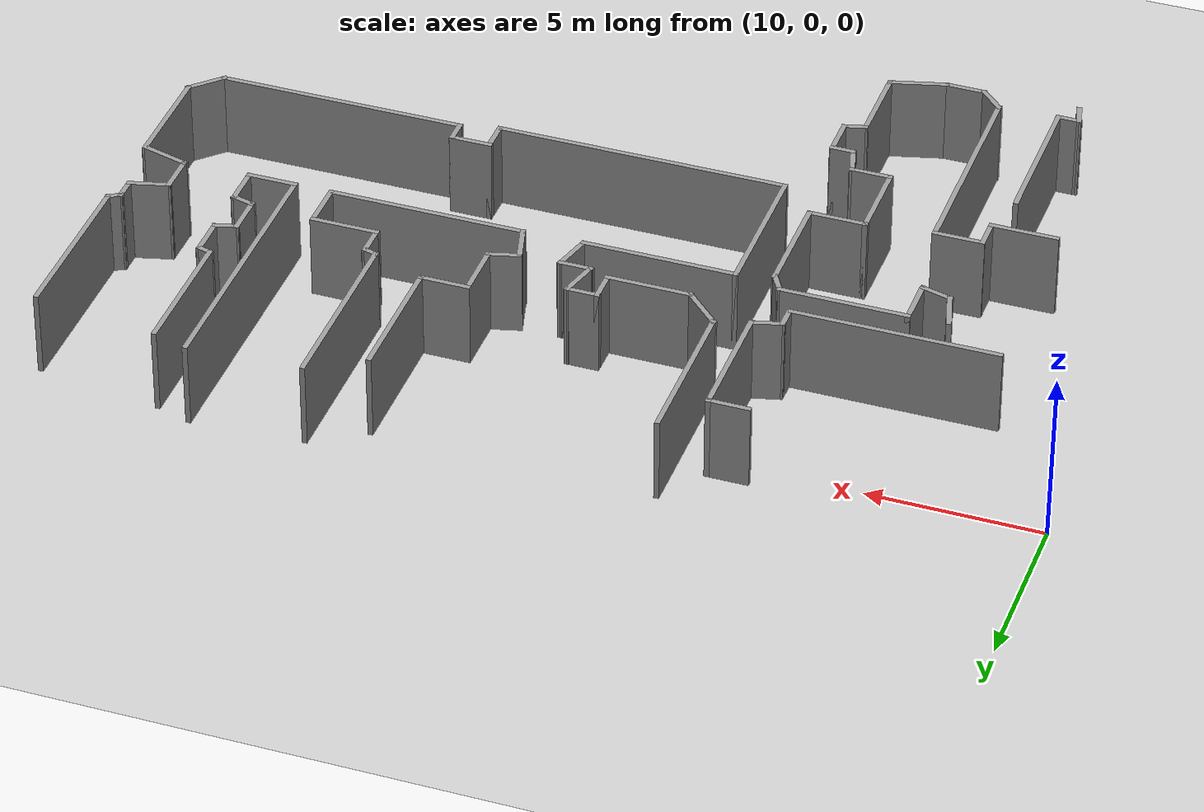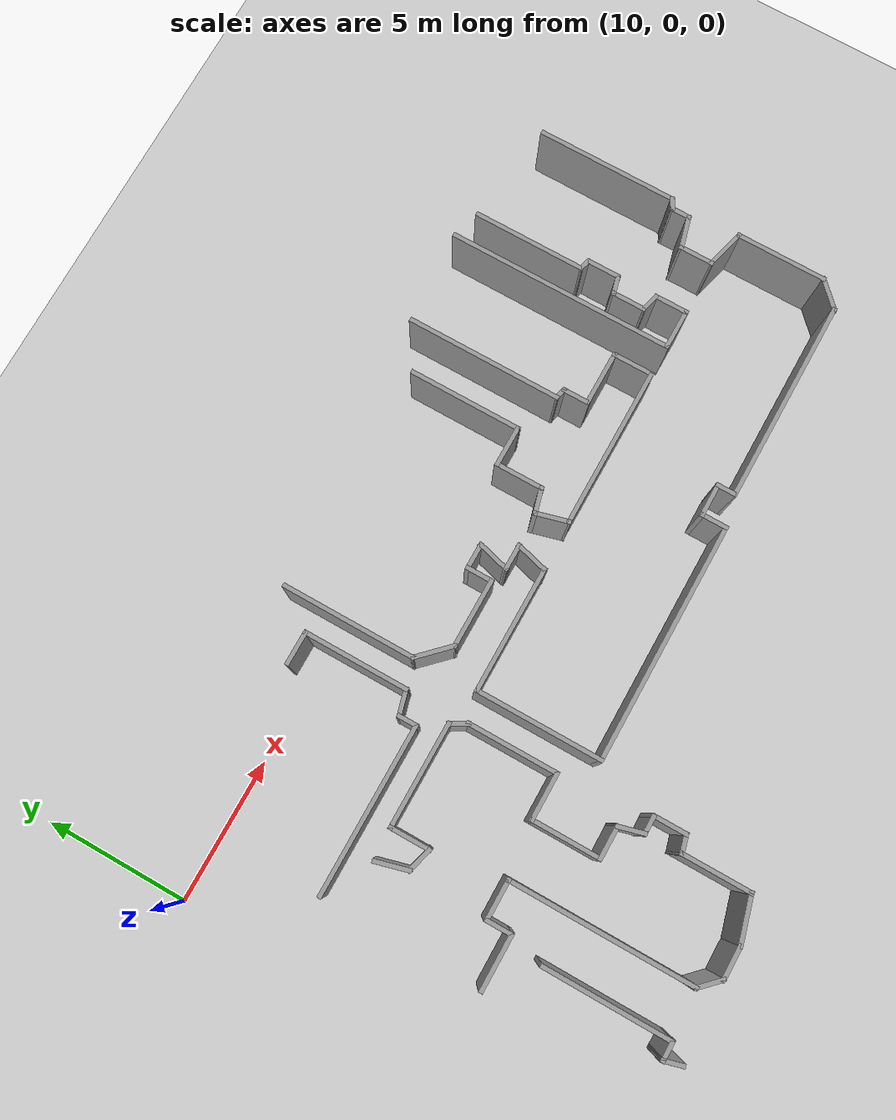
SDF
<sdf version="1.7">
 <world name="default">
  <model name="ground_plane">
   <static>1</static>
   <link name="link">
    <collision name="collision">
     <geometry><plane><normal>0 0 1</normal><size>100 100</size></plane></geometry>
     <surface>
      <contact><collide_bitmask>65535</collide_bitmask></contact>
      <friction><ode><mu>100</mu><mu2>50</mu2></ode></friction>
     </surface>
    </collision>
    <visual name="visual">
     <cast_shadows>0</cast_shadows>
     <geometry><plane><normal>0 0 1</normal><size>100 100</size></plane></geometry>
     <material>
      <script><uri>file://media/materials/scripts/gazebo.material</uri><name>Gazebo/Grey</name></script>
     </material>
    </visual>
   </link>
  </model>
  <model name="Hospital">
   <pose>0.328682 -0.388502 0 0 -0 0</pose>
   <link name="Wall_108">
    <collision name="Wall_108_Collision">
     <geometry><box><size>5 0.15 2.5</size></box></geometry>
     <pose>0 0 1.25 0 -0 0</pose>
    </collision>
    <visual name="Wall_108_Visual">
     <pose>0 0 1.25 0 -0 0</pose>
     <geometry><box><size>5 0.15 2.5</size></box></geometry>
     <material>
      <script><uri>file://media/materials/scripts/gazebo.material</uri><name>Gazebo/Grey</name></script>
      <ambient>1 1 1 1</ambient>
     </material>
     <meta><layer>0</layer></meta>
    </visual>
    <pose>37.24 0.177411 0 0 -0 -1.5708</pose>
   </link>
   <link name="Wall_109">
    <collision name="Wall_109_Collision">
     <geometry><box><size>0.5 0.15 2.5</size></box></geometry>
     <pose>0 0 1.25 0 -0 0</pose>
    </collision>
    <visual name="Wall_109_Visual">
     <pose>0 0 1.25 0 -0 0</pose>
     <geometry><box><size>0.5 0.15 2.5</size></box></geometry>
     <material>
      <script><uri>file://media/materials/scripts/gazebo.material</uri><name>Gazebo/Grey</name></script>
      <ambient>1 1 1 1</ambient>
     </material>
     <meta><layer>0</layer></meta>
    </visual>
    <pose>37.0885 -2.33509 0 0 -0 -2.61799</pose>
   </link>
   <link name="Wall_110">
    <collision name="Wall_110_Collision">
     <geometry><box><size>0.75 0.15 2.5</size></box></geometry>
     <pose>0 0 1.25 0 -0 0</pose>
    </collision>
    <visual name="Wall_110_Visual">
     <pose>0 0 1.25 0 -0 0</pose>
     <geometry><box><size>0.75 0.15 2.5</size></box></geometry>
     <material>
      <script><uri>file://media/materials/scripts/gazebo.material</uri><name>Gazebo/Grey</name></script>
      <ambient>1 1 1 1</ambient>
     </material>
     <meta><layer>0</layer></meta>
    </visual>
    <pose>36.9369 -2.72259 0 0 -0 -1.5708</pose>
   </link>
   <link name="Wall_111">
    <collision name="Wall_111_Collision">
     <geometry><box><size>1.25 0.15 2.5</size></box></geometry>
     <pose>0 0 1.25 0 -0 0</pose>
    </collision>
    <visual name="Wall_111_Visual">
     <pose>0 0 1.25 0 -0 0</pose>
     <geometry><box><size>1.25 0.15 2.5</size></box></geometry>
     <material>
      <script><uri>file://media/materials/scripts/gazebo.material</uri><name>Gazebo/Grey</name></script>
      <ambient>1 1 1 1</ambient>
     </material>
     <meta><layer>0</layer></meta>
    </visual>
    <pose>36.4056 -3.16494 0 0 -0 -2.87979</pose>
   </link>
   <link name="Wall_112">
    <collision name="Wall_112_Collision">
     <geometry><box><size>1.25 0.15 2.5</size></box></geometry>
     <pose>0 0 1.25 0 -0 0</pose>
    </collision>
    <visual name="Wall_112_Visual">
     <pose>0 0 1.25 0 -0 0</pose>
     <geometry><box><size>1.25 0.15 2.5</size></box></geometry>
     <material>
      <script><uri>file://media/materials/scripts/gazebo.material</uri><name>Gazebo/Grey</name></script>
      <ambient>1 1 1 1</ambient>
     </material>
     <meta><layer>0</layer></meta>
    </visual>
    <pose>35.8744 -3.85729 0 0 -0 -1.5708</pose>
   </link>
   <link name="Wall_113">
    <collision name="Wall_113_Collision">
     <geometry><box><size>1.5 0.15 2.5</size></box></geometry>
     <pose>0 0 1.25 0 -0 0</pose>
    </collision>
    <visual name="Wall_113_Visual">
     <pose>0 0 1.25 0 -0 0</pose>
     <geometry><box><size>1.5 0.15 2.5</size></box></geometry>
     <material>
      <script><uri>file://media/materials/scripts/gazebo.material</uri><name>Gazebo/Grey</name></script>
      <ambient>1 1 1 1</ambient>
     </material>
     <meta><layer>0</layer></meta>
    </visual>
    <pose>36.5264 -4.58199 0 0 -0 -0.261799</pose>
   </link>
   <link name="Wall_114">
    <collision name="Wall_114_Collision">
     <geometry><box><size>3.25 0.15 2.5</size></box></geometry>
     <pose>0 0 1.25 0 -0 0</pose>
    </collision>
    <visual name="Wall_114_Visual">
     <pose>0 0 1.25 0 -0 0</pose>
     <geometry><box><size>3.25 0.15 2.5</size></box></geometry>
     <material>
      <script><uri>file://media/materials/scripts/gazebo.material</uri><name>Gazebo/Grey</name></script>
      <ambient>1 1 1 1</ambient>
     </material>
     <meta><layer>0</layer></meta>
    </visual>
    <pose>37.1784 -6.3067 0 0 -0 -1.5708</pose>
   </link>
   <link name="Wall_115">
    <collision name="Wall_115_Collision">
     <geometry><box><size>1.25 0.15 2.5</size></box></geometry>
     <pose>0 0 1.25 0 -0 0</pose>
    </collision>
    <visual name="Wall_115_Visual">
     <pose>0 0 1.25 0 -0 0</pose>
     <geometry><box><size>1.25 0.15 2.5</size></box></geometry>
     <material>
      <script><uri>file://media/materials/scripts/gazebo.material</uri><name>Gazebo/Grey</name></script>
      <ambient>1 1 1 1</ambient>
     </material>
     <meta><layer>0</layer></meta>
    </visual>
    <pose>36.7895 -8.2456 0 0 -0 -2.35619</pose>
   </link>
   <link name="Wall_116">
    <collision name="Wall_116_Collision">
     <geometry><box><size>7.25 0.15 2.5</size></box></geometry>
     <pose>0 0 1.25 0 -0 0</pose>
    </collision>
    <visual name="Wall_116_Visual">
     <pose>0 0 1.25 0 -0 0</pose>
     <geometry><box><size>7.25 0.15 2.5</size></box></geometry>
     <material>
      <script><uri>file://media/materials/scripts/gazebo.material</uri><name>Gazebo/Grey</name></script>
      <ambient>1 1 1 1</ambient>
     </material>
     <meta><layer>0</layer></meta>
    </visual>
    <pose>32.8506 -8.63451 0 0 -0 3.14159</pose>
   </link>
   <link name="Wall_117">
    <collision name="Wall_117_Collision">
     <geometry><box><size>0.75 0.15 2.5</size></box></geometry>
     <pose>0 0 1.25 0 -0 0</pose>
    </collision>
    <visual name="Wall_117_Visual">
     <pose>0 0 1.25 0 -0 0</pose>
     <geometry><box><size>0.75 0.15 2.5</size></box></geometry>
     <material>
      <script><uri>file://media/materials/scripts/gazebo.material</uri><name>Gazebo/Grey</name></script>
      <ambient>1 1 1 1</ambient>
     </material>
     <meta><layer>0</layer></meta>
    </visual>
    <pose>29.3006 -8.33451 0 0 -0 1.5708</pose>
   </link>
   <link name="Wall_118">
    <collision name="Wall_118_Collision">
     <geometry><box><size>1.25 0.15 2.5</size></box></geometry>
     <pose>0 0 1.25 0 -0 0</pose>
    </collision>
    <visual name="Wall_118_Visual">
     <pose>0 0 1.25 0 -0 0</pose>
     <geometry><box><size>1.25 0.15 2.5</size></box></geometry>
     <material>
      <script><uri>file://media/materials/scripts/gazebo.material</uri><name>Gazebo/Grey</name></script>
      <ambient>1 1 1 1</ambient>
     </material>
     <meta><layer>0</layer></meta>
    </visual>
    <pose>28.7506 -8.03451 0 0 -0 3.14159</pose>
   </link>
   <link name="Wall_119">
    <collision name="Wall_119_Collision">
     <geometry><box><size>1 0.15 2.5</size></box></geometry>
     <pose>0 0 1.25 0 -0 0</pose>
    </collision>
    <visual name="Wall_119_Visual">
     <pose>0 0 1.25 0 -0 0</pose>
     <geometry><box><size>1 0.15 2.5</size></box></geometry>
     <material>
      <script><uri>file://media/materials/scripts/gazebo.material</uri><name>Gazebo/Grey</name></script>
      <ambient>1 1 1 1</ambient>
     </material>
     <meta><layer>0</layer></meta>
    </visual>
    <pose>28.2006 -8.45951 0 0 -0 -1.5708</pose>
   </link>
   <link name="Wall_120">
    <collision name="Wall_120_Collision">
     <geometry><box><size>8.5 0.15 2.5</size></box></geometry>
     <pose>0 0 1.25 0 -0 0</pose>
    </collision>
    <visual name="Wall_120_Visual">
     <pose>0 0 1.25 0 -0 0</pose>
     <geometry><box><size>8.5 0.15 2.5</size></box></geometry>
     <material>
      <script><uri>file://media/materials/scripts/gazebo.material</uri><name>Gazebo/Grey</name></script>
      <ambient>1 1 1 1</ambient>
     </material>
     <meta><layer>0</layer></meta>
    </visual>
    <pose>24.0256 -8.88451 0 0 -0 3.14159</pose>
   </link>
   <link name="Wall_121">
    <collision name="Wall_121_Collision">
     <geometry><box><size>4.5 0.15 2.5</size></box></geometry>
     <pose>0 0 1.25 0 -0 0</pose>
    </collision>
    <visual name="Wall_121_Visual">
     <pose>0 0 1.25 0 -0 0</pose>
     <geometry><box><size>4.5 0.15 2.5</size></box></geometry>
     <material>
      <script><uri>file://media/materials/scripts/gazebo.material</uri><name>Gazebo/Grey</name></script>
      <ambient>1 1 1 1</ambient>
     </material>
     <meta><layer>0</layer></meta>
    </visual>
    <pose>19.8506 -6.70951 0 0 -0 1.5708</pose>
   </link>
   <link name="Wall_122">
    <collision name="Wall_122_Collision">
     <geometry><box><size>4.5 0.15 2.5</size></box></geometry>
     <pose>0 0 1.25 0 -0 0</pose>
    </collision>
    <visual name="Wall_122_Visual">
     <pose>0 0 1.25 0 -0 0</pose>
     <geometry><box><size>4.5 0.15 2.5</size></box></geometry>
     <material>
      <script><uri>file://media/materials/scripts/gazebo.material</uri><name>Gazebo/Grey</name></script>
      <ambient>1 1 1 1</ambient>
     </material>
     <meta><layer>0</layer></meta>
    </visual>
    <pose>22.0256 -4.53451 0 0 -0 0</pose>
   </link>
   <link name="Wall_123">
    <collision name="Wall_123_Collision">
     <geometry><box><size>1.25 0.15 2.5</size></box></geometry>
     <pose>0 0 1.25 0 -0 0</pose>
    </collision>
    <visual name="Wall_123_Visual">
     <pose>0 0 1.25 0 -0 0</pose>
     <geometry><box><size>1.25 0.15 2.5</size></box></geometry>
     <material>
      <script><uri>file://media/materials/scripts/gazebo.material</uri><name>Gazebo/Grey</name></script>
      <ambient>1 1 1 1</ambient>
     </material>
     <meta><layer>0</layer></meta>
    </visual>
    <pose>24.3429 -4.00325 0 0 -0 1.309</pose>
   </link>
   <link name="Wall_124">
    <collision name="Wall_124_Collision">
     <geometry><box><size>1 0.15 2.5</size></box></geometry>
     <pose>0 0 1.25 0 -0 0</pose>
    </collision>
    <visual name="Wall_124_Visual">
     <pose>0 0 1.25 0 -0 0</pose>
     <geometry><box><size>1 0.15 2.5</size></box></geometry>
     <material>
      <script><uri>file://media/materials/scripts/gazebo.material</uri><name>Gazebo/Grey</name></script>
      <ambient>1 1 1 1</ambient>
     </material>
     <meta><layer>0</layer></meta>
    </visual>
    <pose>24.0603 -3.472 0 0 -0 3.14159</pose>
   </link>
   <link name="Wall_125">
    <collision name="Wall_125_Collision">
     <geometry><box><size>1.25 0.15 2.5</size></box></geometry>
     <pose>0 0 1.25 0 -0 0</pose>
    </collision>
    <visual name="Wall_125_Visual">
     <pose>0 0 1.25 0 -0 0</pose>
     <geometry><box><size>1.25 0.15 2.5</size></box></geometry>
     <material>
      <script><uri>file://media/materials/scripts/gazebo.material</uri><name>Gazebo/Grey</name></script>
      <ambient>1 1 1 1</ambient>
     </material>
     <meta><layer>0</layer></meta>
    </visual>
    <pose>23.7776 -2.94074 0 0 -0 1.309</pose>
   </link>
   <link name="Wall_126">
    <collision name="Wall_126_Collision">
     <geometry><box><size>1 0.15 2.5</size></box></geometry>
     <pose>0 0 1.25 0 -0 0</pose>
    </collision>
    <visual name="Wall_126_Visual">
     <pose>0 0 1.25 0 -0 0</pose>
     <geometry><box><size>1 0.15 2.5</size></box></geometry>
     <material>
      <script><uri>file://media/materials/scripts/gazebo.material</uri><name>Gazebo/Grey</name></script>
      <ambient>1 1 1 1</ambient>
     </material>
     <meta><layer>0</layer></meta>
    </visual>
    <pose>23.495 -2.40948 0 0 -0 3.14159</pose>
   </link>
   <link name="Wall_127">
    <collision name="Wall_127_Collision">
     <geometry><box><size>1 0.15 2.5</size></box></geometry>
     <pose>0 0 1.25 0 -0 0</pose>
    </collision>
    <visual name="Wall_127_Visual">
     <pose>0 0 1.25 0 -0 0</pose>
     <geometry><box><size>1 0.15 2.5</size></box></geometry>
     <material>
      <script><uri>file://media/materials/scripts/gazebo.material</uri><name>Gazebo/Grey</name></script>
      <ambient>1 1 1 1</ambient>
     </material>
     <meta><layer>0</layer></meta>
    </visual>
    <pose>23.07 -2.83448 0 0 -0 -1.5708</pose>
   </link>
   <link name="Wall_128">
    <collision name="Wall_128_Collision">
     <geometry><box><size>2.5 0.15 2.5</size></box></geometry>
     <pose>0 0 1.25 0 -0 0</pose>
    </collision>
    <visual name="Wall_128_Visual">
     <pose>0 0 1.25 0 -0 0</pose>
     <geometry><box><size>2.5 0.15 2.5</size></box></geometry>
     <material>
      <script><uri>file://media/materials/scripts/gazebo.material</uri><name>Gazebo/Grey</name></script>
      <ambient>1 1 1 1</ambient>
     </material>
     <meta><layer>0</layer></meta>
    </visual>
    <pose>21.895 -3.25948 0 0 -0 3.14159</pose>
   </link>
   <link name="Wall_129">
    <collision name="Wall_129_Collision">
     <geometry><box><size>1.5 0.15 2.5</size></box></geometry>
     <pose>0 0 1.25 0 -0 0</pose>
    </collision>
    <visual name="Wall_129_Visual">
     <pose>0 0 1.25 0 -0 0</pose>
     <geometry><box><size>1.5 0.15 2.5</size></box></geometry>
     <material>
      <script><uri>file://media/materials/scripts/gazebo.material</uri><name>Gazebo/Grey</name></script>
      <ambient>1 1 1 1</ambient>
     </material>
     <meta><layer>0</layer></meta>
    </visual>
    <pose>20.2427 -2.78218 0 0 -0 2.35619</pose>
   </link>
   <link name="Wall_130">
    <collision name="Wall_130_Collision">
     <geometry><box><size>4.75 0.15 2.5</size></box></geometry>
     <pose>0 0 1.25 0 -0 0</pose>
    </collision>
    <visual name="Wall_130_Visual">
     <pose>0 0 1.25 0 -0 0</pose>
     <geometry><box><size>4.75 0.15 2.5</size></box></geometry>
     <material>
      <script><uri>file://media/materials/scripts/gazebo.material</uri><name>Gazebo/Grey</name></script>
      <ambient>1 1 1 1</ambient>
     </material>
     <meta><layer>0</layer></meta>
    </visual>
    <pose>19.7654 -0.004882 0 0 -0 1.5708</pose>
   </link>
   <link name="Wall_142">
    <collision name="Wall_142_Collision">
     <geometry><box><size>1.25 0.15 2.5</size></box></geometry>
     <pose>0 0 1.25 0 -0 0</pose>
    </collision>
    <visual name="Wall_142_Visual">
     <pose>0 0 1.25 0 -0 0</pose>
     <geometry><box><size>1.25 0.15 2.5</size></box></geometry>
     <material>
      <script><uri>file://media/materials/scripts/gazebo.material</uri><name>Gazebo/Grey</name></script>
      <ambient>1 1 1 1</ambient>
     </material>
     <meta><layer>0</layer></meta>
    </visual>
    <pose>18.259 0.987891 0 0 -0 0</pose>
   </link>
   <link name="Wall_143">
    <collision name="Wall_143_Collision">
     <geometry><box><size>3.75 0.15 2.5</size></box></geometry>
     <pose>0 0 1.25 0 -0 0</pose>
    </collision>
    <visual name="Wall_143_Visual">
     <pose>0 0 1.25 0 -0 0</pose>
     <geometry><box><size>3.75 0.15 2.5</size></box></geometry>
     <material>
      <script><uri>file://media/materials/scripts/gazebo.material</uri><name>Gazebo/Grey</name></script>
      <ambient>1 1 1 1</ambient>
     </material>
     <meta><layer>0</layer></meta>
    </visual>
    <pose>18.809 -0.812109 0 0 -0 -1.5708</pose>
   </link>
   <link name="Wall_144">
    <collision name="Wall_144_Collision">
     <geometry><box><size>1 0.15 2.5</size></box></geometry>
     <pose>0 0 1.25 0 -0 0</pose>
    </collision>
    <visual name="Wall_144_Visual">
     <pose>0 0 1.25 0 -0 0</pose>
     <geometry><box><size>1 0.15 2.5</size></box></geometry>
     <material>
      <script><uri>file://media/materials/scripts/gazebo.material</uri><name>Gazebo/Grey</name></script>
      <ambient>1 1 1 1</ambient>
     </material>
     <meta><layer>0</layer></meta>
    </visual>
    <pose>18.3985 -2.72211 0 0 -0 -2.87979</pose>
   </link>
   <link name="Wall_145">
    <collision name="Wall_145_Collision">
     <geometry><box><size>0.75 0.15 2.5</size></box></geometry>
     <pose>0 0 1.25 0 -0 0</pose>
    </collision>
    <visual name="Wall_145_Visual">
     <pose>0 0 1.25 0 -0 0</pose>
     <geometry><box><size>0.75 0.15 2.5</size></box></geometry>
     <material>
      <script><uri>file://media/materials/scripts/gazebo.material</uri><name>Gazebo/Grey</name></script>
      <ambient>1 1 1 1</ambient>
     </material>
     <meta><layer>0</layer></meta>
    </visual>
    <pose>17.988 -3.13211 0 0 -0 -1.5708</pose>
   </link>
   <link name="Wall_146">
    <collision name="Wall_146_Collision">
     <geometry><box><size>6 0.15 2.5</size></box></geometry>
     <pose>0 0 1.25 0 -0 0</pose>
    </collision>
    <visual name="Wall_146_Visual">
     <pose>0 0 1.25 0 -0 0</pose>
     <geometry><box><size>6 0.15 2.5</size></box></geometry>
     <material>
      <script><uri>file://media/materials/scripts/gazebo.material</uri><name>Gazebo/Grey</name></script>
      <ambient>1 1 1 1</ambient>
     </material>
     <meta><layer>0</layer></meta>
    </visual>
    <pose>15.063 -3.4321 0 0 -0 3.14159</pose>
   </link>
   <link name="Wall_153">
    <collision name="Wall_153_Collision">
     <geometry><box><size>1.25 0.15 2.5</size></box></geometry>
     <pose>0 0 1.25 0 -0 0</pose>
    </collision>
    <visual name="Wall_153_Visual">
     <pose>0 0 1.25 0 -0 0</pose>
     <geometry><box><size>1.25 0.15 2.5</size></box></geometry>
     <material>
      <script><uri>file://media/materials/scripts/gazebo.material</uri><name>Gazebo/Grey</name></script>
      <ambient>1 1 1 1</ambient>
     </material>
     <meta><layer>0</layer></meta>
    </visual>
    <pose>13.9709 -4.87529 0 0 -0 -1.309</pose>
   </link>
   <link name="Wall_154">
    <collision name="Wall_154_Collision">
     <geometry><box><size>1 0.15 2.5</size></box></geometry>
     <pose>0 0 1.25 0 -0 0</pose>
    </collision>
    <visual name="Wall_154_Visual">
     <pose>0 0 1.25 0 -0 0</pose>
     <geometry><box><size>1 0.15 2.5</size></box></geometry>
     <material>
      <script><uri>file://media/materials/scripts/gazebo.material</uri><name>Gazebo/Grey</name></script>
      <ambient>1 1 1 1</ambient>
     </material>
     <meta><layer>0</layer></meta>
    </visual>
    <pose>14.5238 -5.51655 0 0 -0 -0.261799</pose>
   </link>
   <link name="Wall_155">
    <collision name="Wall_155_Collision">
     <geometry><box><size>1.5 0.15 2.5</size></box></geometry>
     <pose>0 0 1.25 0 -0 0</pose>
    </collision>
    <visual name="Wall_155_Visual">
     <pose>0 0 1.25 0 -0 0</pose>
     <geometry><box><size>1.5 0.15 2.5</size></box></geometry>
     <material>
      <script><uri>file://media/materials/scripts/gazebo.material</uri><name>Gazebo/Grey</name></script>
      <ambient>1 1 1 1</ambient>
     </material>
     <meta><layer>0</layer></meta>
    </visual>
    <pose>14.9343 -4.95155 0 0 -0 1.5708</pose>
   </link>
   <link name="Wall_156">
    <collision name="Wall_156_Collision">
     <geometry><box><size>3.75 0.15 2.5</size></box></geometry>
     <pose>0 0 1.25 0 -0 0</pose>
    </collision>
    <visual name="Wall_156_Visual">
     <pose>0 0 1.25 0 -0 0</pose>
     <geometry><box><size>3.75 0.15 2.5</size></box></geometry>
     <material>
      <script><uri>file://media/materials/scripts/gazebo.material</uri><name>Gazebo/Grey</name></script>
      <ambient>1 1 1 1</ambient>
     </material>
     <meta><layer>0</layer></meta>
    </visual>
    <pose>16.7343 -4.27655 0 0 -0 0</pose>
   </link>
   <link name="Wall_157">
    <collision name="Wall_157_Collision">
     <geometry><box><size>0.75 0.15 2.5</size></box></geometry>
     <pose>0 0 1.25 0 -0 0</pose>
    </collision>
    <visual name="Wall_157_Visual">
     <pose>0 0 1.25 0 -0 0</pose>
     <geometry><box><size>0.75 0.15 2.5</size></box></geometry>
     <material>
      <script><uri>file://media/materials/scripts/gazebo.material</uri><name>Gazebo/Grey</name></script>
      <ambient>1 1 1 1</ambient>
     </material>
     <meta><layer>0</layer></meta>
    </visual>
    <pose>18.6843 -4.53635 0 0 -0 -1.0472</pose>
   </link>
   <link name="Wall_158">
    <collision name="Wall_158_Collision">
     <geometry><box><size>3.25 0.15 2.5</size></box></geometry>
     <pose>0 0 1.25 0 -0 0</pose>
    </collision>
    <visual name="Wall_158_Visual">
     <pose>0 0 1.25 0 -0 0</pose>
     <geometry><box><size>3.25 0.15 2.5</size></box></geometry>
     <material>
      <script><uri>file://media/materials/scripts/gazebo.material</uri><name>Gazebo/Grey</name></script>
      <ambient>1 1 1 1</ambient>
     </material>
     <meta><layer>0</layer></meta>
    </visual>
    <pose>18.8343 -6.34616 0 0 -0 -1.5708</pose>
   </link>
   <link name="Wall_159">
    <collision name="Wall_159_Collision">
     <geometry><box><size>1.75 0.15 2.5</size></box></geometry>
     <pose>0 0 1.25 0 -0 0</pose>
    </collision>
    <visual name="Wall_159_Visual">
     <pose>0 0 1.25 0 -0 0</pose>
     <geometry><box><size>1.75 0.15 2.5</size></box></geometry>
     <material>
      <script><uri>file://media/materials/scripts/gazebo.material</uri><name>Gazebo/Grey</name></script>
      <ambient>1 1 1 1</ambient>
     </material>
     <meta><layer>0</layer></meta>
    </visual>
    <pose>18.0343 -7.89616 0 0 -0 3.14159</pose>
   </link>
   <link name="Wall_160">
    <collision name="Wall_160_Collision">
     <geometry><box><size>2.5 0.15 2.5</size></box></geometry>
     <pose>0 0 1.25 0 -0 0</pose>
    </collision>
    <visual name="Wall_160_Visual">
     <pose>0 0 1.25 0 -0 0</pose>
     <geometry><box><size>2.5 0.15 2.5</size></box></geometry>
     <material>
      <script><uri>file://media/materials/scripts/gazebo.material</uri><name>Gazebo/Grey</name></script>
      <ambient>1 1 1 1</ambient>
     </material>
     <meta><layer>0</layer></meta>
    </visual>
    <pose>17.2343 -9.07116 0 0 -0 -1.5708</pose>
   </link>
   <link name="Wall_161">
    <collision name="Wall_161_Collision">
     <geometry><box><size>1.25 0.15 2.5</size></box></geometry>
     <pose>0 0 1.25 0 -0 0</pose>
    </collision>
    <visual name="Wall_161_Visual">
     <pose>0 0 1.25 0 -0 0</pose>
     <geometry><box><size>1.25 0.15 2.5</size></box></geometry>
     <material>
      <script><uri>file://media/materials/scripts/gazebo.material</uri><name>Gazebo/Grey</name></script>
      <ambient>1 1 1 1</ambient>
     </material>
     <meta><layer>0</layer></meta>
    </visual>
    <pose>17.7843 -10.2462 0 0 -0 0</pose>
   </link>
   <link name="Wall_162">
    <collision name="Wall_162_Collision">
     <geometry><box><size>1 0.15 2.5</size></box></geometry>
     <pose>0 0 1.25 0 -0 0</pose>
    </collision>
    <visual name="Wall_162_Visual">
     <pose>0 0 1.25 0 -0 0</pose>
     <geometry><box><size>1 0.15 2.5</size></box></geometry>
     <material>
      <script><uri>file://media/materials/scripts/gazebo.material</uri><name>Gazebo/Grey</name></script>
      <ambient>1 1 1 1</ambient>
     </material>
     <meta><layer>0</layer></meta>
    </visual>
    <pose>18.4443 -10.6567 0 0 -0 -1.309</pose>
   </link>
   <link name="Wall_163">
    <collision name="Wall_163_Collision">
     <geometry><box><size>0.75 0.15 2.5</size></box></geometry>
     <pose>0 0 1.25 0 -0 0</pose>
    </collision>
    <visual name="Wall_163_Visual">
     <pose>0 0 1.25 0 -0 0</pose>
     <geometry><box><size>0.75 0.15 2.5</size></box></geometry>
     <material>
      <script><uri>file://media/materials/scripts/gazebo.material</uri><name>Gazebo/Grey</name></script>
      <ambient>1 1 1 1</ambient>
     </material>
     <meta><layer>0</layer></meta>
    </visual>
    <pose>18.8543 -11.0672 0 0 -0 0</pose>
   </link>
   <link name="Wall_164">
    <collision name="Wall_164_Collision">
     <geometry><box><size>1.25 0.15 2.5</size></box></geometry>
     <pose>0 0 1.25 0 -0 0</pose>
    </collision>
    <visual name="Wall_164_Visual">
     <pose>0 0 1.25 0 -0 0</pose>
     <geometry><box><size>1.25 0.15 2.5</size></box></geometry>
     <material>
      <script><uri>file://media/materials/scripts/gazebo.material</uri><name>Gazebo/Grey</name></script>
      <ambient>1 1 1 1</ambient>
     </material>
     <meta><layer>0</layer></meta>
    </visual>
    <pose>19.1543 -11.6172 0 0 -0 -1.5708</pose>
   </link>
   <link name="Wall_165">
    <collision name="Wall_165_Collision">
     <geometry><box><size>0.75 0.15 2.5</size></box></geometry>
     <pose>0 0 1.25 0 -0 0</pose>
    </collision>
    <visual name="Wall_165_Visual">
     <pose>0 0 1.25 0 -0 0</pose>
     <geometry><box><size>0.75 0.15 2.5</size></box></geometry>
     <material>
      <script><uri>file://media/materials/scripts/gazebo.material</uri><name>Gazebo/Grey</name></script>
      <ambient>1 1 1 1</ambient>
     </material>
     <meta><layer>0</layer></meta>
    </visual>
    <pose>18.8646 -12.2448 0 0 -0 -2.87979</pose>
   </link>
   <link name="Wall_166">
    <collision name="Wall_166_Collision">
     <geometry><box><size>2.5 0.15 2.5</size></box></geometry>
     <pose>0 0 1.25 0 -0 0</pose>
    </collision>
    <visual name="Wall_166_Visual">
     <pose>0 0 1.25 0 -0 0</pose>
     <geometry><box><size>2.5 0.15 2.5</size></box></geometry>
     <material>
      <script><uri>file://media/materials/scripts/gazebo.material</uri><name>Gazebo/Grey</name></script>
      <ambient>1 1 1 1</ambient>
     </material>
     <meta><layer>0</layer></meta>
    </visual>
    <pose>18.5748 -13.4975 0 0 -0 -1.5708</pose>
   </link>
   <link name="Wall_167">
    <collision name="Wall_167_Collision">
     <geometry><box><size>1.75 0.15 2.5</size></box></geometry>
     <pose>0 0 1.25 0 -0 0</pose>
    </collision>
    <visual name="Wall_167_Visual">
     <pose>0 0 1.25 0 -0 0</pose>
     <geometry><box><size>1.75 0.15 2.5</size></box></geometry>
     <material>
      <script><uri>file://media/materials/scripts/gazebo.material</uri><name>Gazebo/Grey</name></script>
      <ambient>1 1 1 1</ambient>
     </material>
     <meta><layer>0</layer></meta>
    </visual>
    <pose>17.802 -14.8795 0 0 -0 -2.87979</pose>
   </link>
   <link name="Wall_168">
    <collision name="Wall_168_Collision">
     <geometry><box><size>1.25 0.15 2.5</size></box></geometry>
     <pose>0 0 1.25 0 -0 0</pose>
    </collision>
    <visual name="Wall_168_Visual">
     <pose>0 0 1.25 0 -0 0</pose>
     <geometry><box><size>1.25 0.15 2.5</size></box></geometry>
     <material>
      <script><uri>file://media/materials/scripts/gazebo.material</uri><name>Gazebo/Grey</name></script>
      <ambient>1 1 1 1</ambient>
     </material>
     <meta><layer>0</layer></meta>
    </visual>
    <pose>16.4793 -15.0866 0 0 -0 3.14159</pose>
   </link>
   <link name="Wall_169">
    <collision name="Wall_169_Collision">
     <geometry><box><size>1 0.15 2.5</size></box></geometry>
     <pose>0 0 1.25 0 -0 0</pose>
    </collision>
    <visual name="Wall_169_Visual">
     <pose>0 0 1.25 0 -0 0</pose>
     <geometry><box><size>1 0.15 2.5</size></box></geometry>
     <material>
      <script><uri>file://media/materials/scripts/gazebo.material</uri><name>Gazebo/Grey</name></script>
      <ambient>1 1 1 1</ambient>
     </material>
     <meta><layer>0</layer></meta>
    </visual>
    <pose>15.6288 -14.7861 0 0 -0 2.35619</pose>
   </link>
   <link name="Wall_170">
    <collision name="Wall_170_Collision">
     <geometry><box><size>6.5 0.15 2.5</size></box></geometry>
     <pose>0 0 1.25 0 -0 0</pose>
    </collision>
    <visual name="Wall_170_Visual">
     <pose>0 0 1.25 0 -0 0</pose>
     <geometry><box><size>6.5 0.15 2.5</size></box></geometry>
     <material>
      <script><uri>file://media/materials/scripts/gazebo.material</uri><name>Gazebo/Grey</name></script>
      <ambient>1 1 1 1</ambient>
     </material>
     <meta><layer>0</layer></meta>
    </visual>
    <pose>15.3283 -11.3106 0 0 -0 1.5708</pose>
   </link>
   <link name="Wall_171">
    <collision name="Wall_171_Collision">
     <geometry><box><size>1.5 0.15 2.5</size></box></geometry>
     <pose>0 0 1.25 0 -0 0</pose>
    </collision>
    <visual name="Wall_171_Visual">
     <pose>0 0 1.25 0 -0 0</pose>
     <geometry><box><size>1.5 0.15 2.5</size></box></geometry>
     <material>
      <script><uri>file://media/materials/scripts/gazebo.material</uri><name>Gazebo/Grey</name></script>
      <ambient>1 1 1 1</ambient>
     </material>
     <meta><layer>0</layer></meta>
    </visual>
    <pose>14.6533 -8.13556 0 0 -0 3.14159</pose>
   </link>
   <link name="Wall_172">
    <collision name="Wall_172_Collision">
     <geometry><box><size>1 0.15 2.5</size></box></geometry>
     <pose>0 0 1.25 0 -0 0</pose>
    </collision>
    <visual name="Wall_172_Visual">
     <pose>0 0 1.25 0 -0 0</pose>
     <geometry><box><size>1 0.15 2.5</size></box></geometry>
     <material>
      <script><uri>file://media/materials/scripts/gazebo.material</uri><name>Gazebo/Grey</name></script>
      <ambient>1 1 1 1</ambient>
     </material>
     <meta><layer>0</layer></meta>
    </visual>
    <pose>13.9783 -8.56056 0 0 -0 -1.5708</pose>
   </link>
   <link name="Wall_173">
    <collision name="Wall_173_Collision">
     <geometry><box><size>2 0.15 2.5</size></box></geometry>
     <pose>0 0 1.25 0 -0 0</pose>
    </collision>
    <visual name="Wall_173_Visual">
     <pose>0 0 1.25 0 -0 0</pose>
     <geometry><box><size>2 0.15 2.5</size></box></geometry>
     <material>
      <script><uri>file://media/materials/scripts/gazebo.material</uri><name>Gazebo/Grey</name></script>
      <ambient>1 1 1 1</ambient>
     </material>
     <meta><layer>0</layer></meta>
    </visual>
    <pose>13.0533 -8.98556 0 0 -0 3.14159</pose>
   </link>
   <link name="Wall_178">
    <collision name="Wall_178_Collision">
     <geometry><box><size>4.5 0.15 2.5</size></box></geometry>
     <pose>0 0 1.25 0 -0 0</pose>
    </collision>
    <visual name="Wall_178_Visual">
     <pose>0 0 1.25 0 -0 0</pose>
     <geometry><box><size>4.5 0.15 2.5</size></box></geometry>
     <material>
      <script><uri>file://media/materials/scripts/gazebo.material</uri><name>Gazebo/Grey</name></script>
      <ambient>1 1 1 1</ambient>
     </material>
     <meta><layer>0</layer></meta>
    </visual>
    <pose>13.6282 -12.4106 0 0 -0 -1.5708</pose>
   </link>
   <link name="Wall_179">
    <collision name="Wall_179_Collision">
     <geometry><box><size>0.75 0.15 2.5</size></box></geometry>
     <pose>0 0 1.25 0 -0 0</pose>
    </collision>
    <visual name="Wall_179_Visual">
     <pose>0 0 1.25 0 -0 0</pose>
     <geometry><box><size>0.75 0.15 2.5</size></box></geometry>
     <material>
      <script><uri>file://media/materials/scripts/gazebo.material</uri><name>Gazebo/Grey</name></script>
      <ambient>1 1 1 1</ambient>
     </material>
     <meta><layer>0</layer></meta>
    </visual>
    <pose>13.3283 -14.5856 0 0 -0 3.14159</pose>
   </link>
   <link name="Wall_180">
    <collision name="Wall_180_Collision">
     <geometry><box><size>0.75 0.15 2.5</size></box></geometry>
     <pose>0 0 1.25 0 -0 0</pose>
    </collision>
    <visual name="Wall_180_Visual">
     <pose>0 0 1.25 0 -0 0</pose>
     <geometry><box><size>0.75 0.15 2.5</size></box></geometry>
     <material>
      <script><uri>file://media/materials/scripts/gazebo.material</uri><name>Gazebo/Grey</name></script>
      <ambient>1 1 1 1</ambient>
     </material>
     <meta><layer>0</layer></meta>
    </visual>
    <pose>13.1059 -14.8753 0 0 -0 -1.309</pose>
   </link>
   <link name="Wall_421">
    <collision name="Wall_421_Collision">
     <geometry><box><size>5.5 0.15 2.5</size></box></geometry>
     <pose>0 0 1.25 0 -0 0</pose>
    </collision>
    <visual name="Wall_421_Visual">
     <pose>0 0 1.25 0 -0 0</pose>
     <geometry><box><size>5.5 0.15 2.5</size></box></geometry>
     <material>
      <script><uri>file://media/materials/scripts/gazebo.material</uri><name>Gazebo/Grey</name></script>
      <ambient>1 1 1 1</ambient>
     </material>
     <meta><layer>0</layer></meta>
    </visual>
    <pose>29.3457 0.492952 0 0 -0 -1.5708</pose>
   </link>
   <link name="Wall_422">
    <collision name="Wall_422_Collision">
     <geometry><box><size>0.5 0.15 2.5</size></box></geometry>
     <pose>0 0 1.25 0 -0 0</pose>
    </collision>
    <visual name="Wall_422_Visual">
     <pose>0 0 1.25 0 -0 0</pose>
     <geometry><box><size>0.5 0.15 2.5</size></box></geometry>
     <material>
      <script><uri>file://media/materials/scripts/gazebo.material</uri><name>Gazebo/Grey</name></script>
      <ambient>1 1 1 1</ambient>
     </material>
     <meta><layer>0</layer></meta>
    </visual>
    <pose>29.5147 -2.22734 0 0 -0 -0.261799</pose>
   </link>
   <link name="Wall_423">
    <collision name="Wall_423_Collision">
     <geometry><box><size>1 0.15 2.5</size></box></geometry>
     <pose>0 0 1.25 0 -0 0</pose>
    </collision>
    <visual name="Wall_423_Visual">
     <pose>0 0 1.25 0 -0 0</pose>
     <geometry><box><size>1 0.15 2.5</size></box></geometry>
     <material>
      <script><uri>file://media/materials/scripts/gazebo.material</uri><name>Gazebo/Grey</name></script>
      <ambient>1 1 1 1</ambient>
     </material>
     <meta><layer>0</layer></meta>
    </visual>
    <pose>29.6837 -2.69764 0 0 -0 -1.5708</pose>
   </link>
   <link name="Wall_424">
    <collision name="Wall_424_Collision">
     <geometry><box><size>2 0.15 2.5</size></box></geometry>
     <pose>0 0 1.25 0 -0 0</pose>
    </collision>
    <visual name="Wall_424_Visual">
     <pose>0 0 1.25 0 -0 0</pose>
     <geometry><box><size>2 0.15 2.5</size></box></geometry>
     <material>
      <script><uri>file://media/materials/scripts/gazebo.material</uri><name>Gazebo/Grey</name></script>
      <ambient>1 1 1 1</ambient>
     </material>
     <meta><layer>0</layer></meta>
    </visual>
    <pose>30.6087 -3.12263 0 0 -0 0</pose>
   </link>
   <link name="Wall_425">
    <collision name="Wall_425_Collision">
     <geometry><box><size>1.5 0.15 2.5</size></box></geometry>
     <pose>0 0 1.25 0 -0 0</pose>
    </collision>
    <visual name="Wall_425_Visual">
     <pose>0 0 1.25 0 -0 0</pose>
     <geometry><box><size>1.5 0.15 2.5</size></box></geometry>
     <material>
      <script><uri>file://media/materials/scripts/gazebo.material</uri><name>Gazebo/Grey</name></script>
      <ambient>1 1 1 1</ambient>
     </material>
     <meta><layer>0</layer></meta>
    </visual>
    <pose>31.5337 -3.79764 0 0 -0 -1.5708</pose>
   </link>
   <link name="Wall_426">
    <collision name="Wall_426_Collision">
     <geometry><box><size>5.75 0.15 2.5</size></box></geometry>
     <pose>0 0 1.25 0 -0 0</pose>
    </collision>
    <visual name="Wall_426_Visual">
     <pose>0 0 1.25 0 -0 0</pose>
     <geometry><box><size>5.75 0.15 2.5</size></box></geometry>
     <material>
      <script><uri>file://media/materials/scripts/gazebo.material</uri><name>Gazebo/Grey</name></script>
      <ambient>1 1 1 1</ambient>
     </material>
     <meta><layer>0</layer></meta>
    </visual>
    <pose>28.7337 -4.47264 0 0 -0 3.14159</pose>
   </link>
   <link name="Wall_427">
    <collision name="Wall_427_Collision">
     <geometry><box><size>1.25 0.15 2.5</size></box></geometry>
     <pose>0 0 1.25 0 -0 0</pose>
    </collision>
    <visual name="Wall_427_Visual">
     <pose>0 0 1.25 0 -0 0</pose>
     <geometry><box><size>1.25 0.15 2.5</size></box></geometry>
     <material>
      <script><uri>file://media/materials/scripts/gazebo.material</uri><name>Gazebo/Grey</name></script>
      <ambient>1 1 1 1</ambient>
     </material>
     <meta><layer>0</layer></meta>
    </visual>
    <pose>25.7914 -3.94138 0 0 -0 1.8326</pose>
   </link>
   <link name="Wall_428">
    <collision name="Wall_428_Collision">
     <geometry><box><size>1 0.15 2.5</size></box></geometry>
     <pose>0 0 1.25 0 -0 0</pose>
    </collision>
    <visual name="Wall_428_Visual">
     <pose>0 0 1.25 0 -0 0</pose>
     <geometry><box><size>1 0.15 2.5</size></box></geometry>
     <material>
      <script><uri>file://media/materials/scripts/gazebo.material</uri><name>Gazebo/Grey</name></script>
      <ambient>1 1 1 1</ambient>
     </material>
     <meta><layer>0</layer></meta>
    </visual>
    <pose>26.0595 -3.30012 0 0 -0 0.261799</pose>
   </link>
   <link name="Wall_429">
    <collision name="Wall_429_Collision">
     <geometry><box><size>1.75 0.15 2.5</size></box></geometry>
     <pose>0 0 1.25 0 -0 0</pose>
    </collision>
    <visual name="Wall_429_Visual">
     <pose>0 0 1.25 0 -0 0</pose>
     <geometry><box><size>1.75 0.15 2.5</size></box></geometry>
     <material>
      <script><uri>file://media/materials/scripts/gazebo.material</uri><name>Gazebo/Grey</name></script>
      <ambient>1 1 1 1</ambient>
     </material>
     <meta><layer>0</layer></meta>
    </visual>
    <pose>26.4701 -2.39012 0 0 -0 1.5708</pose>
   </link>
   <link name="Wall_430">
    <collision name="Wall_430_Collision">
     <geometry><box><size>1.5 0.15 2.5</size></box></geometry>
     <pose>0 0 1.25 0 -0 0</pose>
    </collision>
    <visual name="Wall_430_Visual">
     <pose>0 0 1.25 0 -0 0</pose>
     <geometry><box><size>1.5 0.15 2.5</size></box></geometry>
     <material>
      <script><uri>file://media/materials/scripts/gazebo.material</uri><name>Gazebo/Grey</name></script>
      <ambient>1 1 1 1</ambient>
     </material>
     <meta><layer>0</layer></meta>
    </visual>
    <pose>27.1451 -1.59012 0 0 -0 0</pose>
   </link>
   <link name="Wall_431">
    <collision name="Wall_431_Collision">
     <geometry><box><size>4 0.15 2.5</size></box></geometry>
     <pose>0 0 1.25 0 -0 0</pose>
    </collision>
    <visual name="Wall_431_Visual">
     <pose>0 0 1.25 0 -0 0</pose>
     <geometry><box><size>4 0.15 2.5</size></box></geometry>
     <material>
      <script><uri>file://media/materials/scripts/gazebo.material</uri><name>Gazebo/Grey</name></script>
      <ambient>1 1 1 1</ambient>
     </material>
     <meta><layer>0</layer></meta>
    </visual>
    <pose>27.8201 0.33488 0 0 -0 1.5708</pose>
   </link>
   <link name="Wall_439">
    <collision name="Wall_439_Collision">
     <geometry><box><size>8 0.15 2.5</size></box></geometry>
     <pose>0 0 1.25 0 -0 0</pose>
    </collision>
    <visual name="Wall_439_Visual">
     <pose>0 0 1.25 0 -0 0</pose>
     <geometry><box><size>8 0.15 2.5</size></box></geometry>
     <material>
      <script><uri>file://media/materials/scripts/gazebo.material</uri><name>Gazebo/Grey</name></script>
      <ambient>1 1 1 1</ambient>
     </material>
     <meta><layer>0</layer></meta>
    </visual>
    <pose>32.6053 -0.547504 0 0 -0 -1.5708</pose>
   </link>
   <link name="Wall_440">
    <collision name="Wall_440_Collision">
     <geometry><box><size>1.5 0.15 2.5</size></box></geometry>
     <pose>0 0 1.25 0 -0 0</pose>
    </collision>
    <visual name="Wall_440_Visual">
     <pose>0 0 1.25 0 -0 0</pose>
     <geometry><box><size>1.5 0.15 2.5</size></box></geometry>
     <material>
      <script><uri>file://media/materials/scripts/gazebo.material</uri><name>Gazebo/Grey</name></script>
      <ambient>1 1 1 1</ambient>
     </material>
     <meta><layer>0</layer></meta>
    </visual>
    <pose>33.2803 -4.4725 0 0 -0 0</pose>
   </link>
   <link name="Wall_441">
    <collision name="Wall_441_Collision">
     <geometry><box><size>1.25 0.15 2.5</size></box></geometry>
     <pose>0 0 1.25 0 -0 0</pose>
    </collision>
    <visual name="Wall_441_Visual">
     <pose>0 0 1.25 0 -0 0</pose>
     <geometry><box><size>1.25 0.15 2.5</size></box></geometry>
     <material>
      <script><uri>file://media/materials/scripts/gazebo.material</uri><name>Gazebo/Grey</name></script>
      <ambient>1 1 1 1</ambient>
     </material>
     <meta><layer>0</layer></meta>
    </visual>
    <pose>33.9553 -3.9225 0 0 -0 1.5708</pose>
   </link>
   <link name="Wall_442">
    <collision name="Wall_442_Collision">
     <geometry><box><size>0.75 0.15 2.5</size></box></geometry>
     <pose>0 0 1.25 0 -0 0</pose>
    </collision>
    <visual name="Wall_442_Visual">
     <pose>0 0 1.25 0 -0 0</pose>
     <geometry><box><size>0.75 0.15 2.5</size></box></geometry>
     <material>
      <script><uri>file://media/materials/scripts/gazebo.material</uri><name>Gazebo/Grey</name></script>
      <ambient>1 1 1 1</ambient>
     </material>
     <meta><layer>0</layer></meta>
    </visual>
    <pose>33.6655 -3.29486 0 0 -0 2.87979</pose>
   </link>
   <link name="Wall_443">
    <collision name="Wall_443_Collision">
     <geometry><box><size>1.25 0.15 2.5</size></box></geometry>
     <pose>0 0 1.25 0 -0 0</pose>
    </collision>
    <visual name="Wall_443_Visual">
     <pose>0 0 1.25 0 -0 0</pose>
     <geometry><box><size>1.25 0.15 2.5</size></box></geometry>
     <material>
      <script><uri>file://media/materials/scripts/gazebo.material</uri><name>Gazebo/Grey</name></script>
      <ambient>1 1 1 1</ambient>
     </material>
     <meta><layer>0</layer></meta>
    </visual>
    <pose>33.3758 -2.66721 0 0 -0 1.5708</pose>
   </link>
   <link name="Wall_444">
    <collision name="Wall_444_Collision">
     <geometry><box><size>0.75 0.15 2.5</size></box></geometry>
     <pose>0 0 1.25 0 -0 0</pose>
    </collision>
    <visual name="Wall_444_Visual">
     <pose>0 0 1.25 0 -0 0</pose>
     <geometry><box><size>0.75 0.15 2.5</size></box></geometry>
     <material>
      <script><uri>file://media/materials/scripts/gazebo.material</uri><name>Gazebo/Grey</name></script>
      <ambient>1 1 1 1</ambient>
     </material>
     <meta><layer>0</layer></meta>
    </visual>
    <pose>33.6655 -2.03957 0 0 -0 0.261799</pose>
   </link>
   <link name="Wall_445">
    <collision name="Wall_445_Collision">
     <geometry><box><size>1.25 0.15 2.5</size></box></geometry>
     <pose>0 0 1.25 0 -0 0</pose>
    </collision>
    <visual name="Wall_445_Visual">
     <pose>0 0 1.25 0 -0 0</pose>
     <geometry><box><size>1.25 0.15 2.5</size></box></geometry>
     <material>
      <script><uri>file://media/materials/scripts/gazebo.material</uri><name>Gazebo/Grey</name></script>
      <ambient>1 1 1 1</ambient>
     </material>
     <meta><layer>0</layer></meta>
    </visual>
    <pose>33.9553 -1.41192 0 0 -0 1.5708</pose>
   </link>
   <link name="Wall_446">
    <collision name="Wall_446_Collision">
     <geometry><box><size>0.5 0.15 2.5</size></box></geometry>
     <pose>0 0 1.25 0 -0 0</pose>
    </collision>
    <visual name="Wall_446_Visual">
     <pose>0 0 1.25 0 -0 0</pose>
     <geometry><box><size>0.5 0.15 2.5</size></box></geometry>
     <material>
      <script><uri>file://media/materials/scripts/gazebo.material</uri><name>Gazebo/Grey</name></script>
      <ambient>1 1 1 1</ambient>
     </material>
     <meta><layer>0</layer></meta>
    </visual>
    <pose>33.7863 -0.816628 0 0 -0 2.87979</pose>
   </link>
   <link name="Wall_447">
    <collision name="Wall_447_Collision">
     <geometry><box><size>4 0.15 2.5</size></box></geometry>
     <pose>0 0 1.25 0 -0 0</pose>
    </collision>
    <visual name="Wall_447_Visual">
     <pose>0 0 1.25 0 -0 0</pose>
     <geometry><box><size>4 0.15 2.5</size></box></geometry>
     <material>
      <script><uri>file://media/materials/scripts/gazebo.material</uri><name>Gazebo/Grey</name></script>
      <ambient>1 1 1 1</ambient>
     </material>
     <meta><layer>0</layer></meta>
    </visual>
    <pose>33.6172 1.15367 0 0 -0 1.5708</pose>
   </link>
   <static>1</static>
  </model>
 </world>
</sdf>
